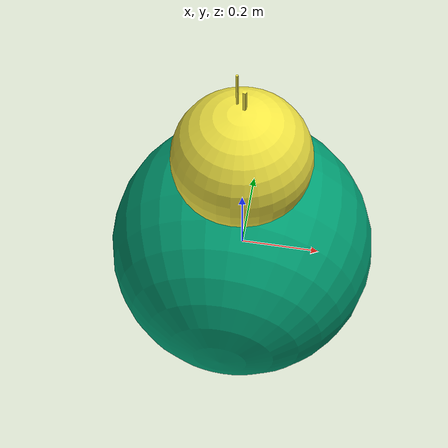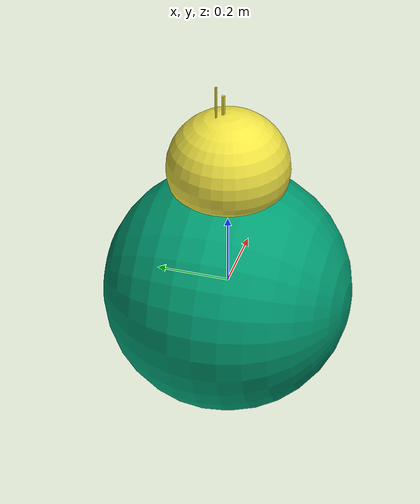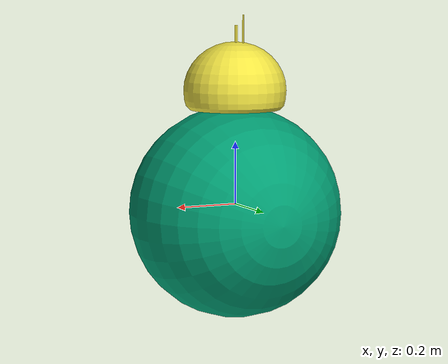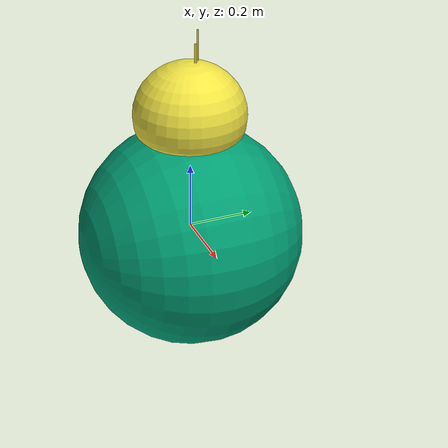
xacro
<?xml version="1.0"?>
<robot name="bb_8" xmlns:xacro="http://ros.org/wiki/xacro">
  <xacro:include filename="$(find bb_8_description)/urdf/bb_8.gazebo.xacro"/>

  <link name="base_link">
    <inertial>
      <origin xyz="0 0 -0.3" rpy="0 0 0" />
      <mass value="5" />
      <inertia
        ixx="0.02" ixy="0.0" ixz="0.0"
        iyy="0.02" iyz="0.0"
        izz="0.02" />
    </inertial>
    <visual>
      <origin xyz="0 0 0" rpy="0 0 0" />
      <geometry>
        <sphere radius="0.1" />
      </geometry>
    </visual>
  </link>

  <joint name="rotation_joint" type="continuous">
    <origin xyz="0 0 0" rpy="0 0 0" />
    <parent link="base_link" />
    <child link="base_rotation_link" />
    <axis xyz="0 0 1" />
  </joint>

  <link name="base_rotation_link">
    <inertial>
      <origin xyz="0 0 -0.35" rpy="0 0 0" />
      <mass value="0.1" />
      <inertia
        ixx="0.0004" ixy="0.0" ixz="0.0"
        iyy="0.0004" iyz="0.0"
        izz="0.0004" />
    </inertial>
    <collision>
      <origin xyz="0 0 0" rpy="0 0 0" />
      <geometry>
        <sphere radius="0.1" />
      </geometry>
    </collision>
    <visual>
      <origin xyz="0 0 0" rpy="0 0 0" />
      <geometry>
        <sphere radius="0.1" />
      </geometry>
    </visual>
  </link>

  <joint name="direction_joint" type="continuous">
    <origin rpy="0 0 0" xyz="0 0 0" />
    <parent link="base_rotation_link" />
    <child link="base_direction_link" />
    <axis xyz="0 1 0" />
  </joint>

  <link name="base_direction_link">
    <inertial>
      <origin xyz="0 0 0" rpy="0 0 0" />
      <mass value="0.1" />
      <inertia
        ixx="0.0004" ixy="0.0" ixz="0.0"
        iyy="0.0004" iyz="0.0"
        izz="0.0004" />
    </inertial>
    <collision>
      <origin xyz="0 0 0" rpy="0 0 0" />
      <geometry>
        <sphere radius="0.35" />
      </geometry>
    </collision>
    <visual>
      <origin xyz="0 0 -0.35" rpy="0 0 0" />
      <geometry>
        <mesh filename="package://bb_8_description/meshes/bb8-body/bb8-body.dae" scale="1 1 1"/>
      </geometry>
    </visual>
  </link>

  <joint name="head_joint" type="continuous">
    <origin xyz="0 0 0" rpy="0 0 0" />
    <parent link="base_rotation_link" />
    <child link="head_link" />
    <axis xyz="0 0 1" />
  </joint>

  <link name="head_link">
    <inertial>
      <origin xyz="0 0 0" rpy="0 0 0" />
      <mass value="0.1" />
      <inertia
        ixx="0.0004" ixy="0.0" ixz="0.0"
        iyy="0.0004" iyz="0.0"
        izz="0.0004" />
    </inertial>
    <collision>
      <origin xyz="0 0 0" rpy="0 0 0" />
      <geometry>
        <sphere radius="0.2" />
      </geometry>
    </collision>
    <visual>
      <origin xyz="0 0 -0.35" rpy="0 0 0" />
      <geometry>
        <mesh filename="package://bb_8_description/meshes/bb8-head/bb8-head.dae" scale="1 1 1"/>
      </geometry>
    </visual>
  </link>

  <joint name="scan_joint" type="fixed">
    <origin xyz="0 0 0" rpy="0 0 0"/>
    <parent link="base_rotation_link"/>
    <child link="base_scan"/>
  </joint>

  <link name="base_scan"/>

</robot>
